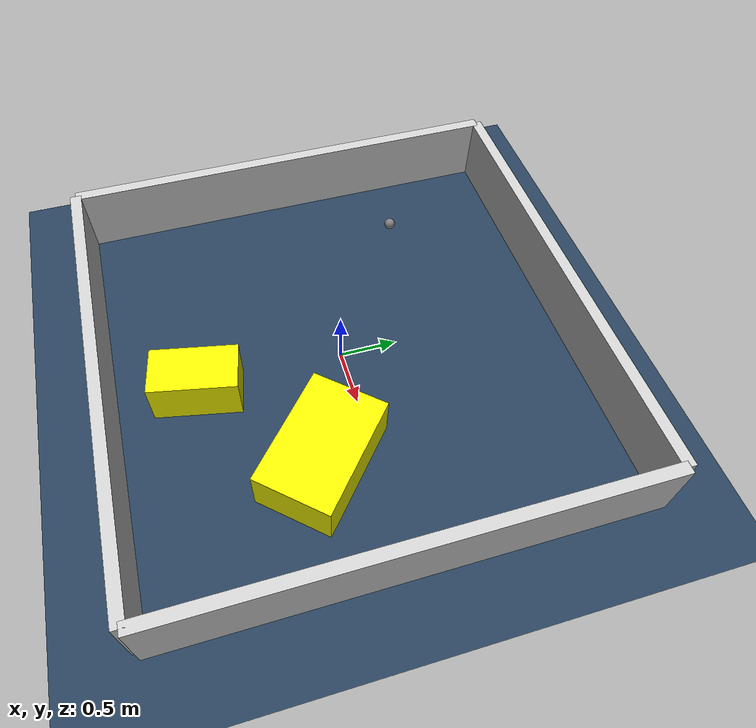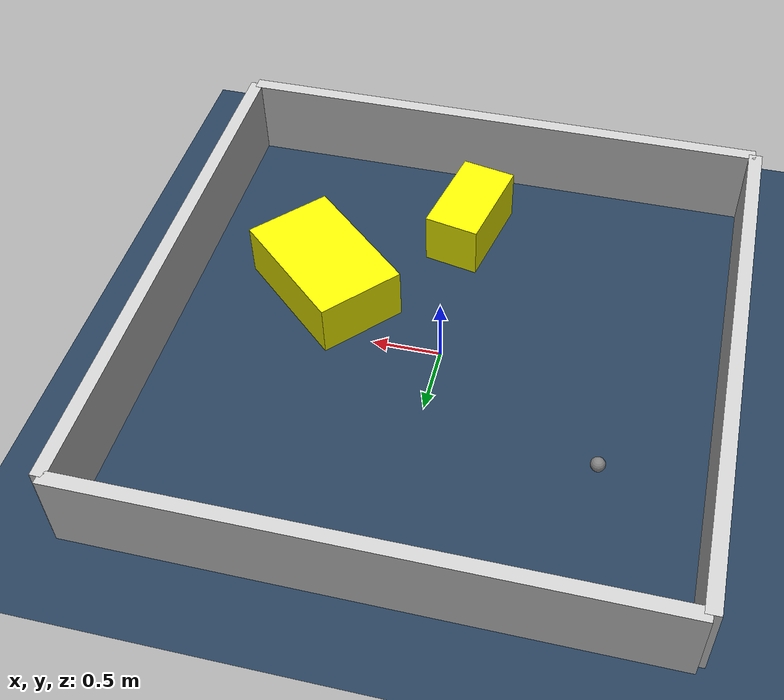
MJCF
<?xml version="1.0" ?>
<mujoco model="generated_environment">
  <option timestep="0.01" integrator="RK4" cone="elliptic"/>
  <default>
    <geom density="1"/>
  </default>
  <asset>
    <texture builtin="gradient" height="3072" rgb1="0.3 0.5 0.7" rgb2="0 0 0" type="skybox" width="512"/>
    <texture builtin="checker" height="300" mark="edge" markrgb="0.8 0.8 0.8" name="groundplane" rgb1="0.2 0.3 0.4" rgb2="0.1 0.2 0.3" type="2d" width="300"/>
    <material name="groundplane" reflectance="0.2" texrepeat="5 5" texture="groundplane" texuniform="true"/>
    <material name="robot" rgba="0.0 1.0 0.0 1"/>
  </asset>
  <worldbody>
    <light dir="0 0 -1" directional="true" pos="0 0 1.5"/>
    <geom condim="4" friction="1.0 0.005 0.001" material="groundplane" name="floor" size="0 0 0.05" type="plane"/>
    <body name="walls">
      <geom name="wall_1" condim="4" pos="-2.0 0.0 0.3" rgba="0.800000011920929 0.800000011920929 0.800000011920929 1.0" size="0.05 2.0 0.3" type="box"/>
      <geom name="wall_2" condim="4" pos="2.0 0.0 0.3" rgba="0.800000011920929 0.800000011920929 0.800000011920929 1.0" size="0.05 2.0 0.3" type="box"/>
      <geom name="wall_3" condim="4" pos="0.0 -2.0 0.3" rgba="0.800000011920929 0.800000011920929 0.800000011920929 1.0" size="2.0 0.05 0.3" type="box"/>
      <geom name="wall_4" condim="4" pos="0.0 2.0 0.3" rgba="0.800000011920929 0.800000011920929 0.800000011920929 1.0" size="2.0 0.05 0.3" type="box"/>
    </body>
    <body name="robot">
      <joint name="joint_x" type="slide" pos="0 0 0" axis="1 0 0"/>
      <joint name="joint_y" type="slide" pos="0 0 0" axis="0 1 0"/>
      <geom name="robot" type="sphere" pos="-1.2391148337815168 0.8486467905676562 0.2" size="0.05" mass="5." friction="1.0 0.005 0.0001" condim="4"/>
      <site name="sensor_ball"/>
    </body>
    <body name="obstacle_1_movable">
      <geom name="obstacle_1_movable" condim="4" pos="0.9762994852890872 -0.428471159971642 0.2" euler="0 0 48.41327428162427" friction="1.0 0.005 0.001" rgba="1 1 0 1" size="0.3279251259146961 0.5134513599941599 0.2" type="box" mass="0.1"/>
      <joint type="free"/>
    </body>
    <body name="obstacle_2_movable">
      <geom name="obstacle_2_movable" condim="4" pos="0.06099941608686543 -1.2636361375705545 0.2" euler="0 0 348.71395192100994" friction="1.0 0.005 0.001" rgba="1 1 0 1" size="0.20549460287117155 0.3666448059229004 0.2" type="box" mass="0.1"/>
      <joint type="free"/>
    </body>
  </worldbody>
  <actuator>
    <motor name="actuator_x" joint="joint_x" gear="1" ctrlrange="-1 1"/>
    <motor name="actuator_y" joint="joint_y" gear="1" ctrlrange="-1 1"/>
  </actuator>
</mujoco>
